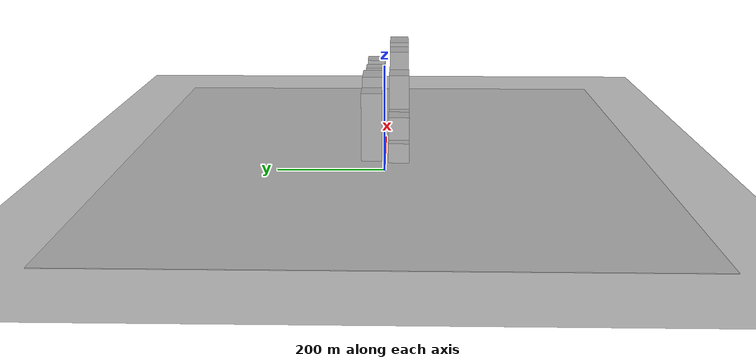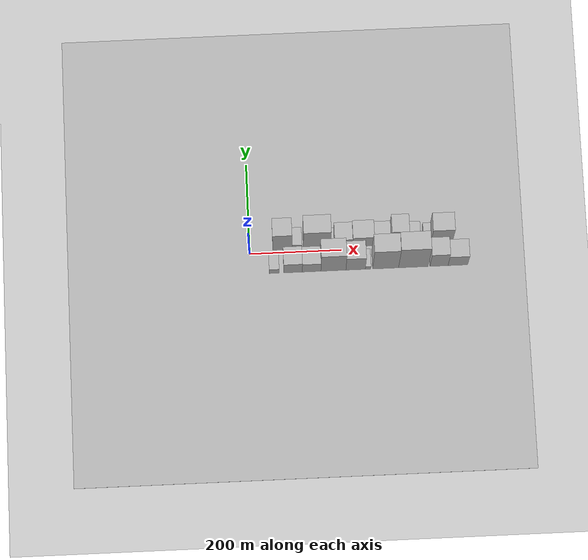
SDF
<?xml version="1.0" encoding="utf-8"?>

<sdf version="1.6">

   <world name="default">

      <gui fullscreen="0">

         <camera name="user_camera">

            <pose>-15 0 4.57585 0 0 0</pose>

            <view_controller>orbit</view_controller>

         </camera>

      </gui>

      <scene>

         <sky>

           <clouds>

             <speed>12</speed>

           </clouds>

         </sky>

         <ambient>0.4 0.4 0.4 1</ambient>

         <background>0.7 0.7 0.7 1</background>

         <shadows>1</shadows>

      </scene>

      <gravity>0 0 -9.8066</gravity>

      <magnetic_field>6e-06 2.3e-05 -4.2e-05</magnetic_field>

      <physics default="0" name="default_physics" type="ode">

         <ode>

            <solver>

               <type>quick</type>

               <iters>10</iters>

               <sor>1.0</sor>

               <use_dynamic_moi_rescaling>0</use_dynamic_moi_rescaling>

            </solver>

            <constraints>

               <cfm>0</cfm>

               <erp>0.2</erp>

               <contact_max_correcting_vel>100</contact_max_correcting_vel>

               <contact_surface_layer>0.001</contact_surface_layer>

            </constraints>

         </ode>

         <max_step_size>0.004</max_step_size>

         <real_time_factor>1</real_time_factor>

         <real_time_update_rate>250</real_time_update_rate>

      </physics>

      <light name="sun" type="directional">

         <cast_shadows>1</cast_shadows>

         <pose>0 0 10 0 0 0</pose>

         <diffuse>0.8 0.8 0.8 1</diffuse>

         <specular>0.2 0.2 0.2 1</specular>

         <attenuation>

            <range>1000</range>

            <constant>0.9</constant>

            <linear>0.01</linear>

            <quadratic>0.001</quadratic>

         </attenuation>

         <direction>-0.5 0.1 -0.9</direction>

      </light>

      <include>

         <name>ground_plane_1</name>

         <uri>model://HANNAS_ground_plane</uri>

         <pose>0 0 0  0 0 0</pose>

      </include>

      <include>

         <name>ground_plane_2</name>

         <uri>model://HANNAS_ground_plane</uri>

         <pose>100 0 0  0 0 0</pose>

      </include>

      <model name="building_1">

         <static>1</static>

         <pose frame="">71.1089 26.0000 0 0.000000 0.000000 1.570796</pose>

         <link name="link">

            <pose frame="">0 0 67.50 0 0 0</pose>

            <collision name="collision">

               <geometry>

                  <box>

                     <size>40.0000 42.2177 135.0000</size>

                  </box>

               </geometry>

               <max_contacts>10</max_contacts>

               <surface>

                  <contact>

                     <ode/>

                  </contact>

                  <bounce/>

                  <friction>

                     <torsional>

                        <ode/>

                     </torsional>

                     <ode/>

                  </friction>

               </surface>

            </collision>

            <visual name="visual">

               <cast_shadows>0</cast_shadows>

               <geometry>

                  <box>

                     <size>40.0000 42.2177 135.0000</size>

                  </box>

               </geometry>

               <material>

                  <script>

                     <uri>model://HANNAS_wall/materials/scripts</uri>

                     <uri>model://HANNAS_wall/materials/textures</uri>

                     <name>vrc/HANNAS_wall</name>

                  </script>

               </material>

            </visual>

            <self_collide>0</self_collide>

            <enable_wind>0</enable_wind>

            <kinematic>0</kinematic>

         </link>

      </model>

      <model name="building_2">

         <static>1</static>

         <pose frame="">103.0684 26.0000 0 0.000000 0.000000 1.570796</pose>

         <link name="link">

            <pose frame="">0 0 19.50 0 0 0</pose>

            <collision name="collision">

               <geometry>

                  <box>

                     <size>40.0000 21.7014 39.0000</size>

                  </box>

               </geometry>

               <max_contacts>10</max_contacts>

               <surface>

                  <contact>

                     <ode/>

                  </contact>

                  <bounce/>

                  <friction>

                     <torsional>

                        <ode/>

                     </torsional>

                     <ode/>

                  </friction>

               </surface>

            </collision>

            <visual name="visual">

               <cast_shadows>0</cast_shadows>

               <geometry>

                  <box>

                     <size>40.0000 21.7014 39.0000</size>

                  </box>

               </geometry>

               <material>

                  <script>

                     <uri>model://HANNAS_wall/materials/scripts</uri>

                     <uri>model://HANNAS_wall/materials/textures</uri>

                     <name>vrc/HANNAS_wall</name>

                  </script>

               </material>

            </visual>

            <self_collide>0</self_collide>

            <enable_wind>0</enable_wind>

            <kinematic>0</kinematic>

         </link>

      </model>

      <model name="building_3">

         <static>1</static>

         <pose frame="">146.8186 26.0000 0 0.000000 0.000000 1.570796</pose>

         <link name="link">

            <pose frame="">0 0 75.00 0 0 0</pose>

            <collision name="collision">

               <geometry>

                  <box>

                     <size>40.0000 59.7990 150.0000</size>

                  </box>

               </geometry>

               <max_contacts>10</max_contacts>

               <surface>

                  <contact>

                     <ode/>

                  </contact>

                  <bounce/>

                  <friction>

                     <torsional>

                        <ode/>

                     </torsional>

                     <ode/>

                  </friction>

               </surface>

            </collision>

            <visual name="visual">

               <cast_shadows>0</cast_shadows>

               <geometry>

                  <box>

                     <size>40.0000 59.7990 150.0000</size>

                  </box>

               </geometry>

               <material>

                  <script>

                     <uri>model://HANNAS_wall/materials/scripts</uri>

                     <uri>model://HANNAS_wall/materials/textures</uri>

                     <name>vrc/HANNAS_wall</name>

                  </script>

               </material>

            </visual>

            <self_collide>0</self_collide>

            <enable_wind>0</enable_wind>

            <kinematic>0</kinematic>

         </link>

      </model>

      <model name="building_4">

         <static>1</static>

         <pose frame="">180.7630 26.0000 0 0.000000 0.000000 1.570796</pose>

         <link name="link">

            <pose frame="">0 0 9.00 0 0 0</pose>

            <collision name="collision">

               <geometry>

                  <box>

                     <size>40.0000 8.0899 18.0000</size>

                  </box>

               </geometry>

               <max_contacts>10</max_contacts>

               <surface>

                  <contact>

                     <ode/>

                  </contact>

                  <bounce/>

                  <friction>

                     <torsional>

                        <ode/>

                     </torsional>

                     <ode/>

                  </friction>

               </surface>

            </collision>

            <visual name="visual">

               <cast_shadows>0</cast_shadows>

               <geometry>

                  <box>

                     <size>40.0000 8.0899 18.0000</size>

                  </box>

               </geometry>

               <material>

                  <script>

                     <uri>model://HANNAS_wall/materials/scripts</uri>

                     <uri>model://HANNAS_wall/materials/textures</uri>

                     <name>vrc/HANNAS_wall</name>

                  </script>

               </material>

            </visual>

            <self_collide>0</self_collide>

            <enable_wind>0</enable_wind>

            <kinematic>0</kinematic>

         </link>

      </model>

      <model name="building_5">

         <static>1</static>

         <pose frame="">204.6827 26.0000 0 0.000000 0.000000 1.570796</pose>

         <link name="link">

            <pose frame="">0 0 34.50 0 0 0</pose>

            <collision name="collision">

               <geometry>

                  <box>

                     <size>40.0000 39.7496 69.0000</size>

                  </box>

               </geometry>

               <max_contacts>10</max_contacts>

               <surface>

                  <contact>

                     <ode/>

                  </contact>

                  <bounce/>

                  <friction>

                     <torsional>

                        <ode/>

                     </torsional>

                     <ode/>

                  </friction>

               </surface>

            </collision>

            <visual name="visual">

               <cast_shadows>0</cast_shadows>

               <geometry>

                  <box>

                     <size>40.0000 39.7496 69.0000</size>

                  </box>

               </geometry>

               <material>

                  <script>

                     <uri>model://HANNAS_wall/materials/scripts</uri>

                     <uri>model://HANNAS_wall/materials/textures</uri>

                     <name>vrc/HANNAS_wall</name>

                  </script>

               </material>

            </visual>

            <self_collide>0</self_collide>

            <enable_wind>0</enable_wind>

            <kinematic>0</kinematic>

         </link>

      </model>

      <model name="building_6">

         <static>1</static>

         <pose frame="">247.9446 26.0000 0 0.000000 0.000000 1.570796</pose>

         <link name="link">

            <pose frame="">0 0 40.50 0 0 0</pose>

            <collision name="collision">

               <geometry>

                  <box>

                     <size>40.0000 46.7743 81.0000</size>

                  </box>

               </geometry>

               <max_contacts>10</max_contacts>

               <surface>

                  <contact>

                     <ode/>

                  </contact>

                  <bounce/>

                  <friction>

                     <torsional>

                        <ode/>

                     </torsional>

                     <ode/>

                  </friction>

               </surface>

            </collision>

            <visual name="visual">

               <cast_shadows>0</cast_shadows>

               <geometry>

                  <box>

                     <size>40.0000 46.7743 81.0000</size>

                  </box>

               </geometry>

               <material>

                  <script>

                     <uri>model://HANNAS_wall/materials/scripts</uri>

                     <uri>model://HANNAS_wall/materials/textures</uri>

                     <name>vrc/HANNAS_wall</name>

                  </script>

               </material>

            </visual>

            <self_collide>0</self_collide>

            <enable_wind>0</enable_wind>

            <kinematic>0</kinematic>

         </link>

      </model>

      <model name="building_7">

         <static>1</static>

         <pose frame="">289.5795 26.0000 0 0.000000 0.000000 1.570796</pose>

         <link name="link">

            <pose frame="">0 0 31.50 0 0 0</pose>

            <collision name="collision">

               <geometry>

                  <box>

                     <size>40.0000 36.4954 63.0000</size>

                  </box>

               </geometry>

               <max_contacts>10</max_contacts>

               <surface>

                  <contact>

                     <ode/>

                  </contact>

                  <bounce/>

                  <friction>

                     <torsional>

                        <ode/>

                     </torsional>

                     <ode/>

                  </friction>

               </surface>

            </collision>

            <visual name="visual">

               <cast_shadows>0</cast_shadows>

               <geometry>

                  <box>

                     <size>40.0000 36.4954 63.0000</size>

                  </box>

               </geometry>

               <material>

                  <script>

                     <uri>model://HANNAS_wall/materials/scripts</uri>

                     <uri>model://HANNAS_wall/materials/textures</uri>

                     <name>vrc/HANNAS_wall</name>

                  </script>

               </material>

            </visual>

            <self_collide>0</self_collide>

            <enable_wind>0</enable_wind>

            <kinematic>0</kinematic>

         </link>

      </model>

      <model name="building_8">

         <static>1</static>

         <pose frame="">326.7707 26.0000 0 0.000000 0.000000 1.570796</pose>

         <link name="link">

            <pose frame="">0 0 61.50 0 0 0</pose>

            <collision name="collision">

               <geometry>

                  <box>

                     <size>40.0000 37.8872 123.0000</size>

                  </box>

               </geometry>

               <max_contacts>10</max_contacts>

               <surface>

                  <contact>

                     <ode/>

                  </contact>

                  <bounce/>

                  <friction>

                     <torsional>

                        <ode/>

                     </torsional>

                     <ode/>

                  </friction>

               </surface>

            </collision>

            <visual name="visual">

               <cast_shadows>0</cast_shadows>

               <geometry>

                  <box>

                     <size>40.0000 37.8872 123.0000</size>

                  </box>

               </geometry>

               <material>

                  <script>

                     <uri>model://HANNAS_wall/materials/scripts</uri>

                     <uri>model://HANNAS_wall/materials/textures</uri>

                     <name>vrc/HANNAS_wall</name>

                  </script>

               </material>

            </visual>

            <self_collide>0</self_collide>

            <enable_wind>0</enable_wind>

            <kinematic>0</kinematic>

         </link>

      </model>

      <model name="building_9">

         <static>1</static>

         <pose frame="">359.3199 26.0000 0 0.000000 0.000000 1.570796</pose>

         <link name="link">

            <pose frame="">0 0 24.00 0 0 0</pose>

            <collision name="collision">

               <geometry>

                  <box>

                     <size>40.0000 27.2112 48.0000</size>

                  </box>

               </geometry>

               <max_contacts>10</max_contacts>

               <surface>

                  <contact>

                     <ode/>

                  </contact>

                  <bounce/>

                  <friction>

                     <torsional>

                        <ode/>

                     </torsional>

                     <ode/>

                  </friction>

               </surface>

            </collision>

            <visual name="visual">

               <cast_shadows>0</cast_shadows>

               <geometry>

                  <box>

                     <size>40.0000 27.2112 48.0000</size>

                  </box>

               </geometry>

               <material>

                  <script>

                     <uri>model://HANNAS_wall/materials/scripts</uri>

                     <uri>model://HANNAS_wall/materials/textures</uri>

                     <name>vrc/HANNAS_wall</name>

                  </script>

               </material>

            </visual>

            <self_collide>0</self_collide>

            <enable_wind>0</enable_wind>

            <kinematic>0</kinematic>

         </link>

      </model>

      <model name="building_10">

         <static>1</static>

         <pose frame="">388.3742 26.0000 0 0.000000 0.000000 1.570796</pose>

         <link name="link">

            <pose frame="">0 0 15.00 0 0 0</pose>

            <collision name="collision">

               <geometry>

                  <box>

                     <size>40.0000 16.8974 30.0000</size>

                  </box>

               </geometry>

               <max_contacts>10</max_contacts>

               <surface>

                  <contact>

                     <ode/>

                  </contact>

                  <bounce/>

                  <friction>

                     <torsional>

                        <ode/>

                     </torsional>

                     <ode/>

                  </friction>

               </surface>

            </collision>

            <visual name="visual">

               <cast_shadows>0</cast_shadows>

               <geometry>

                  <box>

                     <size>40.0000 16.8974 30.0000</size>

                  </box>

               </geometry>

               <material>

                  <script>

                     <uri>model://HANNAS_wall/materials/scripts</uri>

                     <uri>model://HANNAS_wall/materials/textures</uri>

                     <name>vrc/HANNAS_wall</name>

                  </script>

               </material>

            </visual>

            <self_collide>0</self_collide>

            <enable_wind>0</enable_wind>

            <kinematic>0</kinematic>

         </link>

      </model>

      <model name="building_11">

         <static>1</static>

         <pose frame="">420.5760 26.0000 0 0.000000 0.000000 1.570796</pose>

         <link name="link">

            <pose frame="">0 0 60.00 0 0 0</pose>

            <collision name="collision">

               <geometry>

                  <box>

                     <size>40.0000 47.5062 120.0000</size>

                  </box>

               </geometry>

               <max_contacts>10</max_contacts>

               <surface>

                  <contact>

                     <ode/>

                  </contact>

                  <bounce/>

                  <friction>

                     <torsional>

                        <ode/>

                     </torsional>

                     <ode/>

                  </friction>

               </surface>

            </collision>

            <visual name="visual">

               <cast_shadows>0</cast_shadows>

               <geometry>

                  <box>

                     <size>40.0000 47.5062 120.0000</size>

                  </box>

               </geometry>

               <material>

                  <script>

                     <uri>model://HANNAS_wall/materials/scripts</uri>

                     <uri>model://HANNAS_wall/materials/textures</uri>

                     <name>vrc/HANNAS_wall</name>

                  </script>

               </material>

            </visual>

            <self_collide>0</self_collide>

            <enable_wind>0</enable_wind>

            <kinematic>0</kinematic>

         </link>

      </model>

      <model name="building_12">

         <static>1</static>

         <pose frame="">50.9238 -26.0000 0 0.000000 0.000000 1.570796</pose>

         <link name="link">

            <pose frame="">0 0 19.50 0 0 0</pose>

            <collision name="collision">

               <geometry>

                  <box>

                     <size>40.0000 21.8476 39.0000</size>

                  </box>

               </geometry>

               <max_contacts>10</max_contacts>

               <surface>

                  <contact>

                     <ode/>

                  </contact>

                  <bounce/>

                  <friction>

                     <torsional>

                        <ode/>

                     </torsional>

                     <ode/>

                  </friction>

               </surface>

            </collision>

            <visual name="visual">

               <cast_shadows>0</cast_shadows>

               <geometry>

                  <box>

                     <size>40.0000 21.8476 39.0000</size>

                  </box>

               </geometry>

               <material>

                  <script>

                     <uri>model://HANNAS_wall/materials/scripts</uri>

                     <uri>model://HANNAS_wall/materials/textures</uri>

                     <name>vrc/HANNAS_wall</name>

                  </script>

               </material>

            </visual>

            <self_collide>0</self_collide>

            <enable_wind>0</enable_wind>

            <kinematic>0</kinematic>

         </link>

      </model>

      <model name="building_13">

         <static>1</static>

         <pose frame="">92.1425 -26.0000 0 0.000000 0.000000 1.570796</pose>

         <link name="link">

            <pose frame="">0 0 40.50 0 0 0</pose>

            <collision name="collision">

               <geometry>

                  <box>

                     <size>40.0000 40.5897 81.0000</size>

                  </box>

               </geometry>

               <max_contacts>10</max_contacts>

               <surface>

                  <contact>

                     <ode/>

                  </contact>

                  <bounce/>

                  <friction>

                     <torsional>

                        <ode/>

                     </torsional>

                     <ode/>

                  </friction>

               </surface>

            </collision>

            <visual name="visual">

               <cast_shadows>0</cast_shadows>

               <geometry>

                  <box>

                     <size>40.0000 40.5897 81.0000</size>

                  </box>

               </geometry>

               <material>

                  <script>

                     <uri>model://HANNAS_wall/materials/scripts</uri>

                     <uri>model://HANNAS_wall/materials/textures</uri>

                     <name>vrc/HANNAS_wall</name>

                  </script>

               </material>

            </visual>

            <self_collide>0</self_collide>

            <enable_wind>0</enable_wind>

            <kinematic>0</kinematic>

         </link>

      </model>

      <model name="building_14">

         <static>1</static>

         <pose frame="">132.7283 -26.0000 0 0.000000 0.000000 1.570796</pose>

         <link name="link">

            <pose frame="">0 0 37.50 0 0 0</pose>

            <collision name="collision">

               <geometry>

                  <box>

                     <size>40.0000 40.5821 75.0000</size>

                  </box>

               </geometry>

               <max_contacts>10</max_contacts>

               <surface>

                  <contact>

                     <ode/>

                  </contact>

                  <bounce/>

                  <friction>

                     <torsional>

                        <ode/>

                     </torsional>

                     <ode/>

                  </friction>

               </surface>

            </collision>

            <visual name="visual">

               <cast_shadows>0</cast_shadows>

               <geometry>

                  <box>

                     <size>40.0000 40.5821 75.0000</size>

                  </box>

               </geometry>

               <material>

                  <script>

                     <uri>model://HANNAS_wall/materials/scripts</uri>

                     <uri>model://HANNAS_wall/materials/textures</uri>

                     <name>vrc/HANNAS_wall</name>

                  </script>

               </material>

            </visual>

            <self_collide>0</self_collide>

            <enable_wind>0</enable_wind>

            <kinematic>0</kinematic>

         </link>

      </model>

      <model name="building_15">

         <static>1</static>

         <pose frame="">180.3991 -26.0000 0 0.000000 0.000000 1.570796</pose>

         <link name="link">

            <pose frame="">0 0 72.00 0 0 0</pose>

            <collision name="collision">

               <geometry>

                  <box>

                     <size>40.0000 54.7595 144.0000</size>

                  </box>

               </geometry>

               <max_contacts>10</max_contacts>

               <surface>

                  <contact>

                     <ode/>

                  </contact>

                  <bounce/>

                  <friction>

                     <torsional>

                        <ode/>

                     </torsional>

                     <ode/>

                  </friction>

               </surface>

            </collision>

            <visual name="visual">

               <cast_shadows>0</cast_shadows>

               <geometry>

                  <box>

                     <size>40.0000 54.7595 144.0000</size>

                  </box>

               </geometry>

               <material>

                  <script>

                     <uri>model://HANNAS_wall/materials/scripts</uri>

                     <uri>model://HANNAS_wall/materials/textures</uri>

                     <name>vrc/HANNAS_wall</name>

                  </script>

               </material>

            </visual>

            <self_collide>0</self_collide>

            <enable_wind>0</enable_wind>

            <kinematic>0</kinematic>

         </link>

      </model>

      <model name="building_16">

         <static>1</static>

         <pose frame="">229.0700 -26.0000 0 0.000000 0.000000 1.570796</pose>

         <link name="link">

            <pose frame="">0 0 55.50 0 0 0</pose>

            <collision name="collision">

               <geometry>

                  <box>

                     <size>40.0000 42.5824 111.0000</size>

                  </box>

               </geometry>

               <max_contacts>10</max_contacts>

               <surface>

                  <contact>

                     <ode/>

                  </contact>

                  <bounce/>

                  <friction>

                     <torsional>

                        <ode/>

                     </torsional>

                     <ode/>

                  </friction>

               </surface>

            </collision>

            <visual name="visual">

               <cast_shadows>0</cast_shadows>

               <geometry>

                  <box>

                     <size>40.0000 42.5824 111.0000</size>

                  </box>

               </geometry>

               <material>

                  <script>

                     <uri>model://HANNAS_wall/materials/scripts</uri>

                     <uri>model://HANNAS_wall/materials/textures</uri>

                     <name>vrc/HANNAS_wall</name>

                  </script>

               </material>

            </visual>

            <self_collide>0</self_collide>

            <enable_wind>0</enable_wind>

            <kinematic>0</kinematic>

         </link>

      </model>

      <model name="building_17">

         <static>1</static>

         <pose frame="">256.3229 -26.0000 0 0.000000 0.000000 1.570796</pose>

         <link name="link">

            <pose frame="">0 0 13.50 0 0 0</pose>

            <collision name="collision">

               <geometry>

                  <box>

                     <size>40.0000 11.9233 27.0000</size>

                  </box>

               </geometry>

               <max_contacts>10</max_contacts>

               <surface>

                  <contact>

                     <ode/>

                  </contact>

                  <bounce/>

                  <friction>

                     <torsional>

                        <ode/>

                     </torsional>

                     <ode/>

                  </friction>

               </surface>

            </collision>

            <visual name="visual">

               <cast_shadows>0</cast_shadows>

               <geometry>

                  <box>

                     <size>40.0000 11.9233 27.0000</size>

                  </box>

               </geometry>

               <material>

                  <script>

                     <uri>model://HANNAS_wall/materials/scripts</uri>

                     <uri>model://HANNAS_wall/materials/textures</uri>

                     <name>vrc/HANNAS_wall</name>

                  </script>

               </material>

            </visual>

            <self_collide>0</self_collide>

            <enable_wind>0</enable_wind>

            <kinematic>0</kinematic>

         </link>

      </model>

      <model name="building_18">

         <static>1</static>

         <pose frame="">294.6858 -26.0000 0 0.000000 0.000000 1.570796</pose>

         <link name="link">

            <pose frame="">0 0 84.00 0 0 0</pose>

            <collision name="collision">

               <geometry>

                  <box>

                     <size>40.0000 56.8026 168.0000</size>

                  </box>

               </geometry>

               <max_contacts>10</max_contacts>

               <surface>

                  <contact>

                     <ode/>

                  </contact>

                  <bounce/>

                  <friction>

                     <torsional>

                        <ode/>

                     </torsional>

                     <ode/>

                  </friction>

               </surface>

            </collision>

            <visual name="visual">

               <cast_shadows>0</cast_shadows>

               <geometry>

                  <box>

                     <size>40.0000 56.8026 168.0000</size>

                  </box>

               </geometry>

               <material>

                  <script>

                     <uri>model://HANNAS_wall/materials/scripts</uri>

                     <uri>model://HANNAS_wall/materials/textures</uri>

                     <name>vrc/HANNAS_wall</name>

                  </script>

               </material>

            </visual>

            <self_collide>0</self_collide>

            <enable_wind>0</enable_wind>

            <kinematic>0</kinematic>

         </link>

      </model>

      <model name="building_19">

         <static>1</static>

         <pose frame="">355.4953 -26.0000 0 0.000000 0.000000 1.570796</pose>

         <link name="link">

            <pose frame="">0 0 88.50 0 0 0</pose>

            <collision name="collision">

               <geometry>

                  <box>

                     <size>40.0000 64.8163 177.0000</size>

                  </box>

               </geometry>

               <max_contacts>10</max_contacts>

               <surface>

                  <contact>

                     <ode/>

                  </contact>

                  <bounce/>

                  <friction>

                     <torsional>

                        <ode/>

                     </torsional>

                     <ode/>

                  </friction>

               </surface>

            </collision>

            <visual name="visual">

               <cast_shadows>0</cast_shadows>

               <geometry>

                  <box>

                     <size>40.0000 64.8163 177.0000</size>

                  </box>

               </geometry>

               <material>

                  <script>

                     <uri>model://HANNAS_wall/materials/scripts</uri>

                     <uri>model://HANNAS_wall/materials/textures</uri>

                     <name>vrc/HANNAS_wall</name>

                  </script>

               </material>

            </visual>

            <self_collide>0</self_collide>

            <enable_wind>0</enable_wind>

            <kinematic>0</kinematic>

         </link>

      </model>

      <model name="building_20">

         <static>1</static>

         <pose frame="">411.7514 -26.0000 0 0.000000 0.000000 1.570796</pose>

         <link name="link">

            <pose frame="">0 0 55.50 0 0 0</pose>

            <collision name="collision">

               <geometry>

                  <box>

                     <size>40.0000 39.6959 111.0000</size>

                  </box>

               </geometry>

               <max_contacts>10</max_contacts>

               <surface>

                  <contact>

                     <ode/>

                  </contact>

                  <bounce/>

                  <friction>

                     <torsional>

                        <ode/>

                     </torsional>

                     <ode/>

                  </friction>

               </surface>

            </collision>

            <visual name="visual">

               <cast_shadows>0</cast_shadows>

               <geometry>

                  <box>

                     <size>40.0000 39.6959 111.0000</size>

                  </box>

               </geometry>

               <material>

                  <script>

                     <uri>model://HANNAS_wall/materials/scripts</uri>

                     <uri>model://HANNAS_wall/materials/textures</uri>

                     <name>vrc/HANNAS_wall</name>

                  </script>

               </material>

            </visual>

            <self_collide>0</self_collide>

            <enable_wind>0</enable_wind>

            <kinematic>0</kinematic>

         </link>

      </model>

      <model name="building_21">

         <static>1</static>

         <pose frame="">453.1682 -26.0000 0 0.000000 0.000000 1.570796</pose>

         <link name="link">

            <pose frame="">0 0 42.00 0 0 0</pose>

            <collision name="collision">

               <geometry>

                  <box>

                     <size>40.0000 43.1375 84.0000</size>

                  </box>

               </geometry>

               <max_contacts>10</max_contacts>

               <surface>

                  <contact>

                     <ode/>

                  </contact>

                  <bounce/>

                  <friction>

                     <torsional>

                        <ode/>

                     </torsional>

                     <ode/>

                  </friction>

               </surface>

            </collision>

            <visual name="visual">

               <cast_shadows>0</cast_shadows>

               <geometry>

                  <box>

                     <size>40.0000 43.1375 84.0000</size>

                  </box>

               </geometry>

               <material>

                  <script>

                     <uri>model://HANNAS_wall/materials/scripts</uri>

                     <uri>model://HANNAS_wall/materials/textures</uri>

                     <name>vrc/HANNAS_wall</name>

                  </script>

               </material>

            </visual>

            <self_collide>0</self_collide>

            <enable_wind>0</enable_wind>

            <kinematic>0</kinematic>

         </link>

      </model>

   </world>

</sdf>

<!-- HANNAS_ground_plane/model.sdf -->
<sdf version="1.4">
<model name="HANNAS_ground_plane">
  <static>true</static>
    <link name="link">
      <collision name="collision">
        <geometry>
          <plane>
            <normal>0 0 1</normal>
            <size>1000 1000</size>
          </plane>
        </geometry>
        <surface>
          <friction>
            <ode>
              <mu>100</mu>
              <mu2>50</mu2>
            </ode>
          </friction>
        </surface>
      </collision>
      <visual name="visual">
        <cast_shadows>false</cast_shadows>
        <geometry>
          <plane>
            <normal>0 0 1</normal>
            <size>1000 1000</size>
          </plane>
        </geometry>
        <material>
          <script>
            <uri>model://HANNAS_ground_plane/materials/scripts/HANNAS_ground_plane.material</uri>
	    <uri>model://HANNAS_ground_plane/materials/textures</uri>
            <name>HANNASGroundPlane/Image</name>
          </script>
        </material>
      </visual>
    </link>
  </model>
</sdf>
